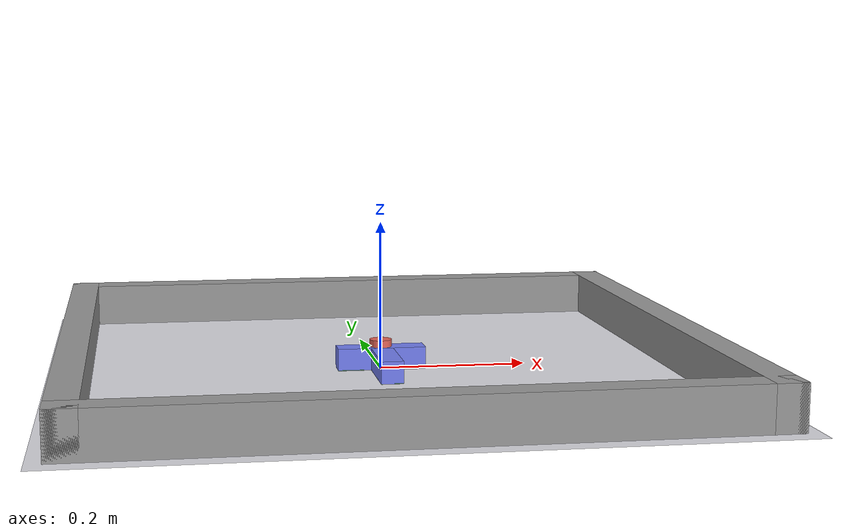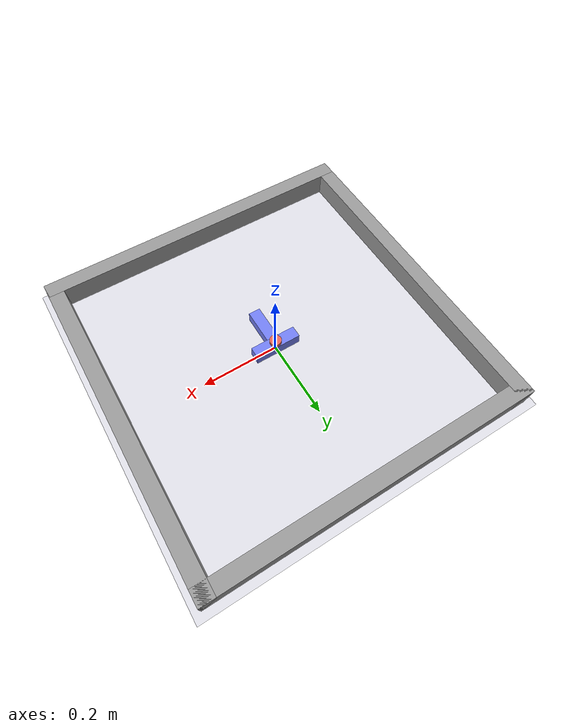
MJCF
<mujoco model="pusht">
  <option timestep="0.01" integrator="implicitfast"/>

  <visual>
    <headlight ambient="0.45 0.45 0.45" diffuse="0.6 0.6 0.6" specular="0.1 0.1 0.1"/>
    <global offwidth="640" offheight="640"/>
  </visual>

  <asset>
    <texture name="grid" type="2d" builtin="checker" rgb1="0.92 0.92 0.94" rgb2="0.83 0.83 0.87"
             width="256" height="256"/>
    <material name="table_mat" texture="grid" texrepeat="8 8" reflectance="0"/>
  </asset>

  <worldbody>
    <camera name="top" pos="0 0 1.0" quat="1 0 0 0" fovy="50"/>

    <geom name="table" type="plane" size="0.45 0.45 0.1" material="table_mat"
          contype="0" conaffinity="0"/>

    <!-- workspace walls -->
    <geom name="wall_n" type="box" pos="0  0.41 0.03" size="0.43 0.02 0.03" rgba="0.6 0.6 0.6 1"/>
    <geom name="wall_s" type="box" pos="0 -0.41 0.03" size="0.43 0.02 0.03" rgba="0.6 0.6 0.6 1"/>
    <geom name="wall_e" type="box" pos=" 0.41 0 0.03" size="0.02 0.43 0.03" rgba="0.6 0.6 0.6 1"/>
    <geom name="wall_w" type="box" pos="-0.41 0 0.03" size="0.02 0.43 0.03" rgba="0.6 0.6 0.6 1"/>

    <!-- fixed goal pose, visual only -->
    <body name="target" pos="0 0 0.0005">
      <site name="target_site" pos="0 0 0" size="0.005" rgba="0 0 0 0"/>
      <geom name="target_bar"  type="box" size="0.06 0.015 0.0005" pos="0  0.00 0"
            rgba="0.35 0.8 0.4 0.5" contype="0" conaffinity="0"/>
      <geom name="target_stem" type="box" size="0.015 0.045 0.0005" pos="0 -0.06 0"
            rgba="0.35 0.8 0.4 0.5" contype="0" conaffinity="0"/>
    </body>

    <!-- T-shaped block: bar 0.12 x 0.03, stem 0.03 x 0.09, welded -->
    <body name="tee" pos="0 0 0.0152">
      <joint name="tee_x"   type="slide" axis="1 0 0" damping="4"    frictionloss="1.2"/>
      <joint name="tee_y"   type="slide" axis="0 1 0" damping="4"    frictionloss="1.2"/>
      <joint name="tee_yaw" type="hinge" axis="0 0 1" damping="0.02" frictionloss="0.006"/>
      <geom name="tee_bar"  type="box" size="0.06 0.015 0.015" pos="0  0.00 0"
            rgba="0.45 0.5 0.95 1" mass="0.06"/>
      <geom name="tee_stem" type="box" size="0.015 0.045 0.015" pos="0 -0.06 0"
            rgba="0.45 0.5 0.95 1" mass="0.045"/>
    </body>

    <!-- cylindrical pusher on two actuated slides -->
    <body name="pusher" pos="0 0 0.02">
      <joint name="pusher_x" type="slide" axis="1 0 0" damping="0.5"/>
      <joint name="pusher_y" type="slide" axis="0 1 0" damping="0.5"/>
      <geom name="pusher_tip" type="cylinder" size="0.015 0.02"
            rgba="0.9 0.4 0.35 1" mass="0.2"/>
    </body>
  </worldbody>

  <actuator>
    <velocity name="pusher_vx" joint="pusher_x" kv="20" ctrlrange="-1 1" forcerange="-30 30"/>
    <velocity name="pusher_vy" joint="pusher_y" kv="20" ctrlrange="-1 1" forcerange="-30 30"/>
  </actuator>
</mujoco>
